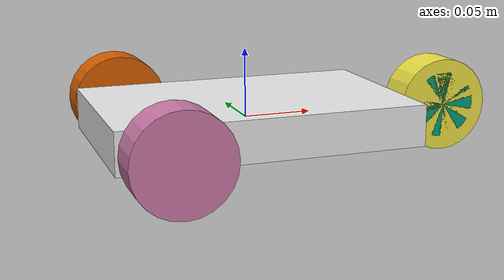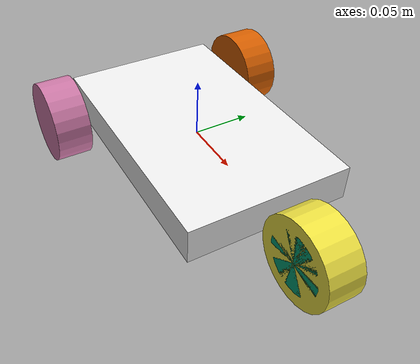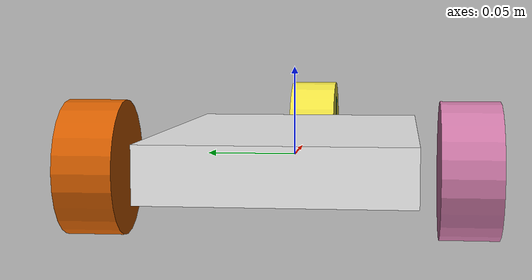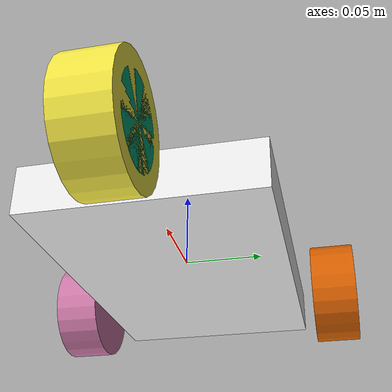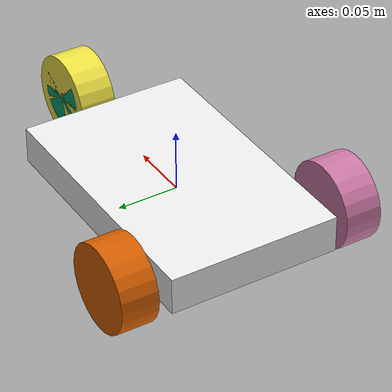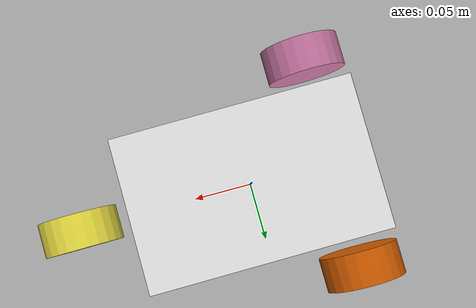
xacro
<?xml version="1.0"?>
<robot name="ackrm_robot"
  xmlns:xacro="http://ros.org/wiki/xacro">

  <xacro:property name="PI" value="3.1415926535897931"/>
  <xacro:property name="chassis_length" value="0.22" />
  <xacro:property name="chassis_width" value="0.14" />
  <xacro:property name="chassis_heigth" value="0.03" />
  <xacro:property name="chassis_mass" value="${chassis_length*chassis_width*chassis_heigth*5000}" />
  <xacro:property name="wheel_radius" value="0.035" />
  <xacro:property name="wheel_length" value="0.03" />
  <xacro:property name="wheel_mass" value="${pi*wheel_radius*wheel_radius*wheel_length*500}" />
  <xacro:property name="virtual_wheel_radius" value="0.005" />
  <xacro:property name="virtual_wheel_length" value="0.001" />
  <xacro:property name="virtual_wheel_mass" value="0.001" />

  <xacro:include filename="wheel_macros.xacro" />

<link name="base_link">
</link>

<joint name="chassis_joint" type="fixed">
  <parent link="base_link"/>
  <child link="chassis_link"/>
  <origin xyz="0 0 0"/>
</joint>

  <link name="chassis_link">
    <visual>
      <geometry>
        <box size="${chassis_length} ${chassis_width} ${chassis_heigth}" />
      </geometry>
      <material name="white" />
    </visual>
    <collision>
      <geometry>
        <box size="${chassis_length} ${chassis_width} ${chassis_heigth}" />
      </geometry>
    </collision>

    <xacro:inertial_box mass="${chassis_mass}" x="${chassis_length}" y="${chassis_width}" z="${chassis_heigth}">
            <origin xyz="0 0 0" rpy="0 0 0"/>
    </xacro:inertial_box>

  </link>

  <link name="front_wheel_steering">
    <visual>
      <origin xyz="0 0 0" rpy="${PI/2} 0 ${PI/2}"/>
      <geometry>
        <cylinder length="${wheel_length}" radius="${wheel_radius-0.01}"/>
      </geometry>
      <material name="invisible"/>
    </visual>

    <xacro:inertial_cylinder mass="${wheel_mass}" length="${wheel_length}" radius="${wheel_radius-0.01}">
      <origin xyz="0 0 0" rpy="${PI/2} 0 ${PI/2}"/>
    </xacro:inertial_cylinder>

    <collision>
      <origin xyz="0 0 0" rpy="${PI/2} 0 ${PI/2}" />
      <geometry>
          <cylinder radius="${wheel_radius-0.01}" length="${wheel_length}"/>
      </geometry>
    </collision>

  </link>

  <joint name="front_wheel_steering_joint" type="revolute">
    <parent link="chassis_link"/>
    <child link="front_wheel_steering"/>
    <origin xyz="${chassis_length/2+wheel_radius+0.01} 0 0" rpy="0 0 ${PI/2}"/>
    <axis xyz="0 0 1"/>
    <limit lower="-${PI/4}" upper="${PI/4}" effort="100.0" velocity="0.0"/>
    <dynamics damping="0.03"/>
  </joint>

  <link name="front_wheel">
    <visual>
      <origin xyz="0 0 0" rpy="${PI/2} 0 ${PI/2}"/>
      <geometry>
        <cylinder length="${wheel_length}" radius="${wheel_radius}"/>
      </geometry>
    </visual>

    <xacro:inertial_cylinder mass="${wheel_mass}" length="${wheel_length}" radius="${wheel_radius}">
      <origin xyz="0 0 0" rpy="${PI/2} 0 ${PI/2}"/>
    </xacro:inertial_cylinder>

    <collision>
      <origin xyz="0 0 0" rpy="${PI/2} 0 ${PI/2}" />
      <geometry>
          <cylinder radius="${wheel_radius}" length="${wheel_length}"/>
      </geometry>
    </collision>

  </link>

  <joint name="front_wheel_joint" type="continuous">
    <parent link="front_wheel_steering"/>
    <child link="front_wheel"/>
    <origin xyz="0 0 0" rpy="0 0 0"/>
    <axis xyz="1 0 0"/>
  </joint>"

  <link name="virtual_rear_wheel">

    <visual>
      <origin xyz="0 0 0" rpy="${PI/2} 0 ${PI/2}"/>
      <geometry>
        <cylinder length="${virtual_wheel_length}" radius="${virtual_wheel_radius}"/>
      </geometry>
      <material name="invisible"/>
    </visual>

    <xacro:inertial_cylinder mass="${virtual_wheel_mass}" length="${virtual_wheel_length}" radius="${virtual_wheel_radius}">
      <origin xyz="0 0 0" rpy="${PI/2} 0 ${PI/2}"/>
    </xacro:inertial_cylinder>

    <collision>
      <origin xyz="0 0 0" rpy="${PI/2} 0 ${PI/2}" />
      <geometry>
          <cylinder radius="${virtual_wheel_radius}" length="${virtual_wheel_length}"/>
      </geometry>
    </collision>

  </link>

  <joint name="virtual_rear_wheel_joint" type="continuous">
    <parent link="chassis_link"/>
    <child link="virtual_rear_wheel"/>
    <origin xyz="-${chassis_length/2-wheel_radius} 0 0" rpy="0 0 ${PI/2}"/>
    <axis xyz="1 0 0"/>
    <limit effort="100.0" velocity="100.0"/>
    <dynamics damping="0.03"/>
  </joint>

  <link name="right_rear_wheel">
    <visual>
      <origin xyz="0 0 0" rpy="${PI/2} 0 ${PI/2}"/>
      <geometry>
        <cylinder length="${wheel_length}" radius="${wheel_radius}"/>
      </geometry>
    </visual>

    <xacro:inertial_cylinder mass="${wheel_mass}" length="${wheel_length}" radius="${wheel_radius}">
      <origin xyz="0 0 0" rpy="${PI/2} 0 ${PI/2}"/>
    </xacro:inertial_cylinder>

    <collision>
      <origin xyz="0 0 0" rpy="${PI/2} 0 ${PI/2}" />
      <geometry>
          <cylinder radius="${wheel_radius}" length="${wheel_length}"/>
      </geometry>
    </collision>
  </link>

  <joint name="right_rear_wheel_joint" type="fixed">
    <parent link="virtual_rear_wheel"/>
    <child link="right_rear_wheel"/>
    <origin xyz="${chassis_width/2+wheel_length/2+0.01} 0 0" rpy="0 0 0"/>
    <axis xyz="1 0 0"/>
  </joint>

  <link name="left_rear_wheel">
    <visual>
      <origin xyz="0 0 0" rpy="${PI/2} 0 ${PI/2}"/>
      <geometry>
        <cylinder length="${wheel_length}" radius="${wheel_radius}"/>
      </geometry>
    </visual>

    <xacro:inertial_cylinder mass="${wheel_mass}" length="${wheel_length}" radius="${wheel_radius}">
      <origin xyz="0 0 0" rpy="${PI/2} 0 ${PI/2}"/>
    </xacro:inertial_cylinder>

    <collision>
      <origin xyz="0 0 0" rpy="${PI/2} 0 ${PI/2}" />
      <geometry>
          <cylinder radius="${wheel_radius}" length="${wheel_length}"/>
      </geometry>
    </collision>
  </link>

  <joint name="left_rear_wheel_joint" type="fixed">
    <parent link="virtual_rear_wheel"/>
    <child link="left_rear_wheel"/>
    <origin xyz="-${chassis_width/2+wheel_length/2+0.01} 0 0" rpy="0 0 0"/>
    <axis xyz="1 0 0"/>
  </joint>

</robot>

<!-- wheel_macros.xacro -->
<robot name="cylinder_wheel"
  xmlns:xacro="http://www.ros.org/wiki/xacro">

  <xacro:include filename="inertial_macros.xacro" />

  <xacro:macro name="cylinder_wheel" params="name wr wh wm parent xpos ypos mimic axis">
    <link name="${name}_wheel">
      <visual>
        <geometry>
          <cylinder length="${wh}" radius="${wr}" />
        </geometry>
        <origin rpy="1.57 0 0" xyz="0 0 0" />
        <material name="blue" />
      </visual>
      <collision>
        <geometry>
          <cylinder length="${wh}" radius="${wr}" />
        </geometry>
        <origin rpy="1.57 0 0" xyz="0 0 0" />
      </collision>

      <xacro:inertial_cylinder mass='${wm}' length='${wh}' radius='${wr}'>
        <origin rpy="1.57 0 0" xyz="0 0 0" />
      </xacro:inertial_cylinder>

    </link>

    <joint name="${name}_wheel_joint" type="continuous">
      <parent link="${parent}" />
      <child link="${name}_wheel" />
      <origin xyz="${xpos} ${ypos} 0" rpy="0 0 0" />
      <axis xyz="${axis}" rpy="0 0 0" />
      <limit effort="1000" velocity="100" />
      <joint_properties damping="0.0" friction="10.0" />
      <mimic joint="virtual_${mimic}_wheel_joint" multiplier="1.0" offset="0.0"/>
    </joint>

  </xacro:macro>

</robot>

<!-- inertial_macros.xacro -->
<robot xmlns:xacro="http://www.ros.org/wiki/xacro" >

    <xacro:macro name="inertial_sphere" params="mass radius *origin">
        <inertial>
            <xacro:insert_block name="origin"/>
            <mass value="${mass}" />
            <inertia ixx="${(2/5) * mass * (radius*radius)}" ixy="0.0" ixz="0.0"
                    iyy="${(2/5) * mass * (radius*radius)}" iyz="0.0"
                    izz="${(2/5) * mass * (radius*radius)}" />
        </inertial>
    </xacro:macro>

    <xacro:macro name="inertial_box" params="mass x y z *origin">
        <inertial>
            <xacro:insert_block name="origin"/>
            <mass value="${mass}" />
            <inertia ixx="${(1/12) * mass * (y*y+z*z)}" ixy="0.0" ixz="0.0"
                    iyy="${(1/12) * mass * (x*x+z*z)}" iyz="0.0"
                    izz="${(1/12) * mass * (x*x+y*y)}" />
        </inertial>
    </xacro:macro>

    <xacro:macro name="inertial_cylinder" params="mass length radius *origin">
        <inertial>
            <xacro:insert_block name="origin"/>
            <mass value="${mass}" />
            <inertia ixx="${(1/12) * mass * (3*radius*radius + length*length)}" ixy="0.0" ixz="0.0"
                    iyy="${(1/12) * mass * (3*radius*radius + length*length)}" iyz="0.0"
                    izz="${(1/2) * mass * (radius*radius)}" />
        </inertial>
    </xacro:macro>
</robot>
